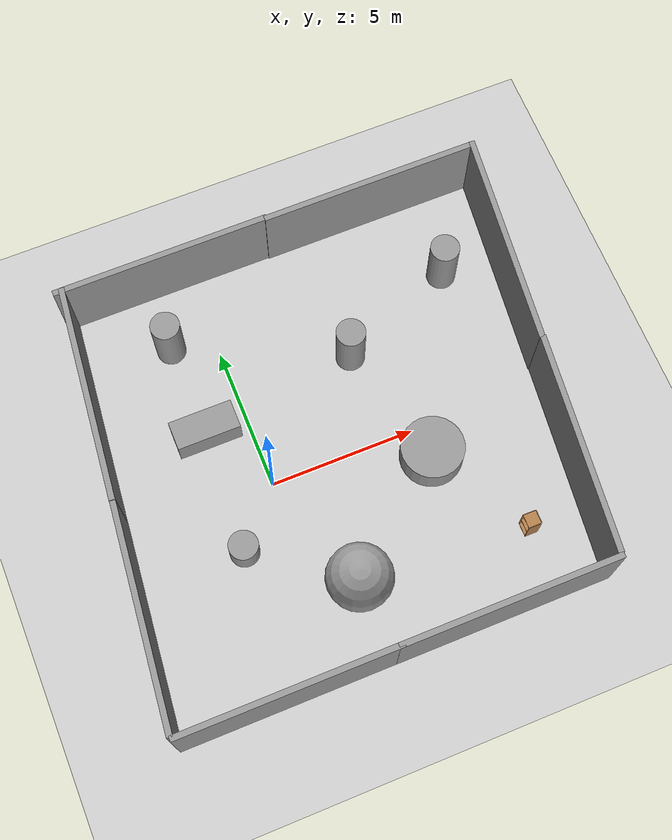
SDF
<sdf version="1.7">
 <world name="default">
  <light name="sun" type="directional">
   <pose>0 0 10 0 -0 0</pose>
   <diffuse>0.8 0.8 0.8 1</diffuse>
   <specular>0.2 0.2 0.2 1</specular>
   <attenuation>
    <range>1000</range>
    <constant>0.9</constant>
    <linear>0.01</linear>
    <quadratic>0.001</quadratic>
   </attenuation>
   <direction>-0.5 0.1 -0.9</direction>
   <spot><inner_angle>0</inner_angle><outer_angle>0</outer_angle><falloff>0</falloff></spot>
  </light>
  <model name="ground_plane">
   <static>1</static>
   <link name="link">
    <collision name="collision">
     <geometry><plane><normal>0 0 1</normal><size>100 100</size></plane></geometry>
     <surface>
      <contact><collide_bitmask>65535</collide_bitmask></contact>
      <friction><ode><mu>100</mu><mu2>50</mu2></ode></friction>
     </surface>
    </collision>
    <visual name="visual">
     <cast_shadows>0</cast_shadows>
     <geometry><plane><normal>0 0 1</normal><size>100 100</size></plane></geometry>
     <material>
      <script><uri>file://media/materials/scripts/gazebo.material</uri><name>Gazebo/Grey</name></script>
     </material>
    </visual>
   </link>
  </model>
  <gravity>0 0 -9.8</gravity>
  <magnetic_field>6e-06 2.3e-05 -4.2e-05</magnetic_field>
  <atmosphere type="adiabatic"/>
  <physics type="ode">
   <max_step_size>0.001</max_step_size>
   <real_time_factor>1</real_time_factor>
   <real_time_update_rate>1000</real_time_update_rate>
  </physics>
  <scene><ambient>0.4 0.4 0.4 1</ambient><background>0.7 0.7 0.7 1</background><shadows>1</shadows></scene>
  <spherical_coordinates>
   <surface_model>EARTH_WGS84</surface_model>
   <latitude_deg>0</latitude_deg>
   <longitude_deg>0</longitude_deg>
   <elevation>0</elevation>
   <heading_deg>0</heading_deg>
  </spherical_coordinates>
  <model name="grey_wall">
   <static>1</static>
   <link name="link">
    <pose>0 0 1.4 0 -0 0</pose>
    <collision name="collision"><geometry><box><size>7.5 0.2 2.8</size></box></geometry></collision>
    <visual name="visual">
     <cast_shadows>0</cast_shadows>
     <geometry><box><size>7.5 0.2 2.8</size></box></geometry>
     <material>
      <script>
       <uri>model://grey_wall/materials/scripts</uri>
       <uri>model://grey_wall/materials/textures</uri>
       <name>vrc/grey_wall</name>
      </script>
     </material>
    </visual>
   </link>
   <pose>-2.08376 -6.93849 0 0 -0 0</pose>
  </model>
  <model name="grey_wall_0">
   <static>1</static>
   <link name="link">
    <pose>0 0 1.4 0 -0 0</pose>
    <collision name="collision"><geometry><box><size>7.5 0.2 2.8</size></box></geometry></collision>
    <visual name="visual">
     <cast_shadows>0</cast_shadows>
     <geometry><box><size>7.5 0.2 2.8</size></box></geometry>
     <material>
      <script>
       <uri>model://grey_wall/materials/scripts</uri>
       <uri>model://grey_wall/materials/textures</uri>
       <name>vrc/grey_wall</name>
      </script>
     </material>
    </visual>
   </link>
   <pose>5.22613 -6.94076 0 0 -0 0</pose>
  </model>
  <model name="grey_wall_1">
   <static>1</static>
   <link name="link">
    <pose>0 0 1.4 0 -0 0</pose>
    <collision name="collision"><geometry><box><size>7.5 0.2 2.8</size></box></geometry></collision>
    <visual name="visual">
     <cast_shadows>0</cast_shadows>
     <geometry><box><size>7.5 0.2 2.8</size></box></geometry>
     <material>
      <script>
       <uri>model://grey_wall/materials/scripts</uri>
       <uri>model://grey_wall/materials/textures</uri>
       <name>vrc/grey_wall</name>
      </script>
     </material>
    </visual>
   </link>
   <pose>9.31027 -3.12972 -0 0 -0 1.46365</pose>
  </model>
  <model name="grey_wall_1_clone">
   <static>1</static>
   <link name="link">
    <pose>0 0 1.4 0 -0 0</pose>
    <collision name="collision"><geometry><box><size>7.5 0.2 2.8</size></box></geometry></collision>
    <visual name="visual">
     <cast_shadows>0</cast_shadows>
     <geometry><box><size>7.5 0.2 2.8</size></box></geometry>
     <material>
      <script>
       <uri>model://grey_wall/materials/scripts</uri>
       <uri>model://grey_wall/materials/textures</uri>
       <name>vrc/grey_wall</name>
      </script>
     </material>
    </visual>
   </link>
   <pose>-5.41207 -3.16304 0 0 -0 1.46365</pose>
  </model>
  <model name="grey_wall_1_clone_0">
   <static>1</static>
   <link name="link">
    <pose>0 0 1.4 0 -0 0</pose>
    <collision name="collision"><geometry><box><size>7.5 0.2 2.8</size></box></geometry></collision>
    <visual name="visual">
     <cast_shadows>0</cast_shadows>
     <geometry><box><size>7.5 0.2 2.8</size></box></geometry>
     <material>
      <script>
       <uri>model://grey_wall/materials/scripts</uri>
       <uri>model://grey_wall/materials/textures</uri>
       <name>vrc/grey_wall</name>
      </script>
     </material>
    </visual>
   </link>
   <pose>10.0824 4.28841 0 0 -0 1.46365</pose>
  </model>
  <model name="grey_wall_1_clone_1">
   <static>1</static>
   <link name="link">
    <pose>0 0 1.4 0 -0 0</pose>
    <collision name="collision"><geometry><box><size>7.5 0.2 2.8</size></box></geometry></collision>
    <visual name="visual">
     <cast_shadows>0</cast_shadows>
     <geometry><box><size>7.5 0.2 2.8</size></box></geometry>
     <material>
      <script>
       <uri>model://grey_wall/materials/scripts</uri>
       <uri>model://grey_wall/materials/textures</uri>
       <name>vrc/grey_wall</name>
      </script>
     </material>
    </visual>
   </link>
   <pose>-4.61373 4.31555 0 0 -0 1.46365</pose>
  </model>
  <model name="grey_wall_0_clone">
   <static>1</static>
   <link name="link">
    <pose>0 0 1.4 0 -0 0</pose>
    <collision name="collision"><geometry><box><size>7.5 0.2 2.8</size></box></geometry></collision>
    <visual name="visual">
     <cast_shadows>0</cast_shadows>
     <geometry><box><size>7.5 0.2 2.8</size></box></geometry>
     <material>
      <script>
       <uri>model://grey_wall/materials/scripts</uri>
       <uri>model://grey_wall/materials/textures</uri>
       <name>vrc/grey_wall</name>
      </script>
     </material>
    </visual>
   </link>
   <pose>6.63231 7.91878 0 0 -0 0</pose>
  </model>
  <model name="grey_wall_clone">
   <static>1</static>
   <link name="link">
    <pose>0 0 1.4 0 -0 0</pose>
    <collision name="collision"><geometry><box><size>7.5 0.2 2.8</size></box></geometry></collision>
    <visual name="visual">
     <cast_shadows>0</cast_shadows>
     <geometry><box><size>7.5 0.2 2.8</size></box></geometry>
     <material>
      <script>
       <uri>model://grey_wall/materials/scripts</uri>
       <uri>model://grey_wall/materials/textures</uri>
       <name>vrc/grey_wall</name>
      </script>
     </material>
    </visual>
   </link>
   <pose>-0.776377 7.95387 0 0 -0 0</pose>
  </model>
  <model name="cabinet">
   <static>1</static>
   <link name="cabinet_bottom_plate">
    <inertial>
     <pose>0 0 -1 0 -0 0</pose>
     <inertia><ixx>2.05</ixx><ixy>0</ixy><ixz>0</ixz><iyy>2.05</iyy><iyz>0</iyz><izz>2.05</izz></inertia>
     <mass>25</mass>
    </inertial>
    <collision name="cabinet_bottom_plate_geom">
     <pose>0 0 0.01 0 -0 0</pose>
     <geometry><box><size>0.45 0.45 0.02</size></box></geometry>
    </collision>
    <visual name="cabinet_bottom_plate_geom_visual">
     <pose>0 0 0.01 0 -0 0</pose>
     <geometry><box><size>0.45 0.45 0.02</size></box></geometry>
     <material>
      <script><uri>file://media/materials/scripts/gazebo.material</uri><name>Gazebo/Wood</name></script>
     </material>
    </visual>
    <collision name="cabinet_bottom_plate_geom_cabinet_back_plate">
     <pose>0.235 0 0.51 0 -0 0</pose>
     <geometry><box><size>0.02 0.45 1.02</size></box></geometry>
    </collision>
    <visual name="cabinet_bottom_plate_geom_cabinet_back_plate_visual">
     <pose>0.235 0 0.51 0 -0 0</pose>
     <geometry><box><size>0.02 0.45 1.02</size></box></geometry>
     <material>
      <script><uri>file://media/materials/scripts/gazebo.material</uri><name>Gazebo/Wood</name></script>
     </material>
    </visual>
    <collision name="cabinet_bottom_plate_geom_cabinet_left_plate">
     <pose>0 0.235 0.51 0 -0 0</pose>
     <geometry><box><size>0.45 0.02 1.02</size></box></geometry>
    </collision>
    <visual name="cabinet_bottom_plate_geom_cabinet_left_plate_visual">
     <pose>0 0.235 0.51 0 -0 0</pose>
     <geometry><box><size>0.45 0.02 1.02</size></box></geometry>
     <material>
      <script><uri>file://media/materials/scripts/gazebo.material</uri><name>Gazebo/Wood</name></script>
     </material>
    </visual>
    <collision name="cabinet_bottom_plate_geom_cabinet_middle_plate">
     <pose>0 0 0.51 0 -0 0</pose>
     <geometry><box><size>0.45 0.45 0.02</size></box></geometry>
    </collision>
    <visual name="cabinet_bottom_plate_geom_cabinet_middle_plate_visual">
     <pose>0 0 0.51 0 -0 0</pose>
     <geometry><box><size>0.45 0.45 0.02</size></box></geometry>
     <material>
      <script><uri>file://media/materials/scripts/gazebo.material</uri><name>Gazebo/Wood</name></script>
     </material>
    </visual>
    <collision name="cabinet_bottom_plate_geom_cabinet_right_plate">
     <pose>0 -0.235 0.51 0 -0 0</pose>
     <geometry><box><size>0.45 0.02 1.02</size></box></geometry>
    </collision>
    <visual name="cabinet_bottom_plate_geom_cabinet_right_plate_visual">
     <pose>0 -0.235 0.51 0 -0 0</pose>
     <geometry><box><size>0.45 0.02 1.02</size></box></geometry>
     <material>
      <script><uri>file://media/materials/scripts/gazebo.material</uri><name>Gazebo/Wood</name></script>
     </material>
    </visual>
    <collision name="cabinet_bottom_plate_geom_cabinet_top_plate">
     <pose>0 0 1.01 0 -0 0</pose>
     <geometry><box><size>0.45 0.45 0.02</size></box></geometry>
    </collision>
    <visual name="cabinet_bottom_plate_geom_cabinet_top_plate_visual">
     <pose>0 0 1.01 0 -0 0</pose>
     <geometry><box><size>0.45 0.45 0.02</size></box></geometry>
     <material>
      <script><uri>file://media/materials/scripts/gazebo.material</uri><name>Gazebo/Wood</name></script>
     </material>
    </visual>
   </link>
   <pose>7.24743 -4.51523 0 0 -0 0</pose>
  </model>
  <model name="unit_cylinder">
   <pose>5.26216 -1.05119 0.499995 -5e-06 -5e-06 -1.2e-05</pose>
   <link name="link">
    <inertial>
     <mass>1</mass>
     <inertia><ixx>0.145833</ixx><ixy>0</ixy><ixz>0</ixz><iyy>0.145833</iyy><iyz>0</iyz><izz>0.125</izz></inertia>
    </inertial>
    <collision name="collision">
     <geometry><cylinder><radius>1.07178</radius><length>1</length></cylinder></geometry>
    </collision>
    <visual name="visual">
     <geometry><cylinder><radius>1.07178</radius><length>1</length></cylinder></geometry>
     <material>
      <script><name>Gazebo/Grey</name><uri>file://media/materials/scripts/gazebo.material</uri></script>
     </material>
    </visual>
   </link>
  </model>
  <model name="unit_sphere">
   <pose>1.35896 -4.20848 1.12109 0 -0 0</pose>
   <link name="link">
    <inertial>
     <mass>1</mass>
     <inertia><ixx>0.1</ixx><ixy>0</ixy><ixz>0</ixz><iyy>0.1</iyy><iyz>0</iyz><izz>0.1</izz></inertia>
    </inertial>
    <collision name="collision"><geometry><sphere><radius>1.12109</radius></sphere></geometry></collision>
    <visual name="visual">
     <geometry><sphere><radius>1.12109</radius></sphere></geometry>
     <material>
      <script><name>Gazebo/Grey</name><uri>file://media/materials/scripts/gazebo.material</uri></script>
     </material>
    </visual>
   </link>
  </model>
  <model name="unit_box">
   <pose>-1.42739 2.48669 0.499999 -2e-06 0 2e-06</pose>
   <link name="link">
    <inertial>
     <mass>1</mass>
     <inertia>
      <ixx>0.166667</ixx>
      <ixy>0</ixy>
      <ixz>0</ixz>
      <iyy>0.166667</iyy>
      <iyz>0</iyz>
      <izz>0.166667</izz>
     </inertia>
    </inertial>
    <collision name="collision"><geometry><box><size>2.18923 1 1</size></box></geometry></collision>
    <visual name="visual">
     <geometry><box><size>2.18923 1 1</size></box></geometry>
     <material>
      <script><name>Gazebo/Grey</name><uri>file://media/materials/scripts/gazebo.material</uri></script>
     </material>
    </visual>
   </link>
  </model>
  <model name="unit_cylinder_0">
   <pose>4.11026 3.27494 1.08233 0 0 -9e-06</pose>
   <link name="link">
    <inertial>
     <mass>1</mass>
     <inertia><ixx>0.145833</ixx><ixy>0</ixy><ixz>0</ixz><iyy>0.145833</iyy><iyz>0</iyz><izz>0.125</izz></inertia>
    </inertial>
    <collision name="collision">
     <geometry><cylinder><radius>0.5</radius><length>2.16468</length></cylinder></geometry>
    </collision>
    <visual name="visual">
     <geometry><cylinder><radius>0.5</radius><length>2.16468</length></cylinder></geometry>
     <material>
      <script><name>Gazebo/Grey</name><uri>file://media/materials/scripts/gazebo.material</uri></script>
     </material>
    </visual>
   </link>
  </model>
  <model name="unit_cylinder_1">
   <pose>-1.6898 -1.81345 0.499997 3e-06 4e-06 -0</pose>
   <link name="link">
    <inertial>
     <mass>1</mass>
     <inertia><ixx>0.145833</ixx><ixy>0</ixy><ixz>0</ixz><iyy>0.145833</iyy><iyz>0</iyz><izz>0.125</izz></inertia>
    </inertial>
    <collision name="collision">
     <geometry><cylinder><radius>0.5</radius><length>1</length></cylinder></geometry>
    </collision>
    <visual name="visual">
     <geometry><cylinder><radius>0.5</radius><length>1</length></cylinder></geometry>
     <material>
      <script><name>Gazebo/Grey</name><uri>file://media/materials/scripts/gazebo.material</uri></script>
     </material>
    </visual>
   </link>
  </model>
  <model name="unit_cylinder_0_clone">
   <pose>8.21685 4.93626 1.08234 0 -0 -7e-06</pose>
   <link name="link">
    <inertial>
     <mass>1</mass>
     <inertia><ixx>0.145833</ixx><ixy>0</ixy><ixz>0</ixz><iyy>0.145833</iyy><iyz>0</iyz><izz>0.125</izz></inertia>
    </inertial>
    <collision name="collision">
     <geometry><cylinder><radius>0.5</radius><length>2.16468</length></cylinder></geometry>
    </collision>
    <visual name="visual">
     <geometry><cylinder><radius>0.5</radius><length>2.16468</length></cylinder></geometry>
     <material>
      <script><name>Gazebo/Grey</name><uri>file://media/materials/scripts/gazebo.material</uri></script>
     </material>
    </visual>
   </link>
  </model>
  <model name="unit_cylinder_0_clone_0">
   <pose>-1.49071 5.7935 1.08233 0 0 -7e-06</pose>
   <link name="link">
    <inertial>
     <mass>1</mass>
     <inertia><ixx>0.145833</ixx><ixy>0</ixy><ixz>0</ixz><iyy>0.145833</iyy><iyz>0</iyz><izz>0.125</izz></inertia>
    </inertial>
    <collision name="collision">
     <geometry><cylinder><radius>0.5</radius><length>2.16468</length></cylinder></geometry>
    </collision>
    <visual name="visual">
     <geometry><cylinder><radius>0.5</radius><length>2.16468</length></cylinder></geometry>
     <material>
      <script><name>Gazebo/Grey</name><uri>file://media/materials/scripts/gazebo.material</uri></script>
     </material>
    </visual>
   </link>
  </model>
 </world>
</sdf>
